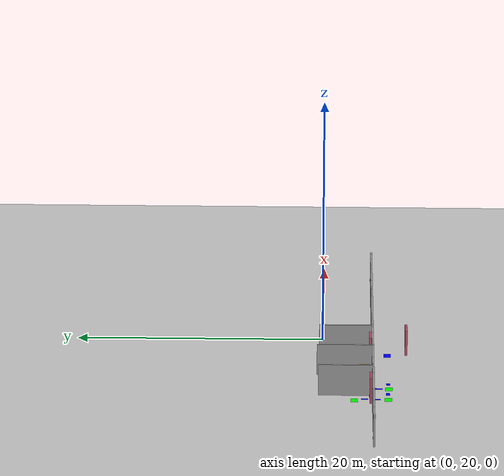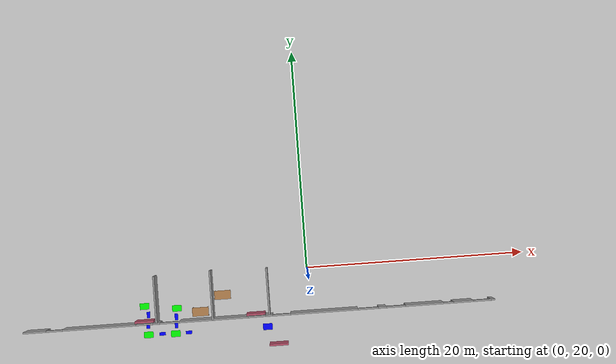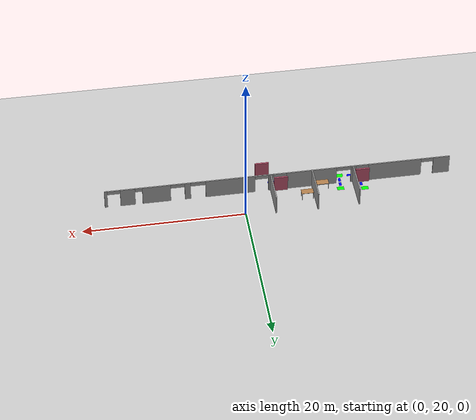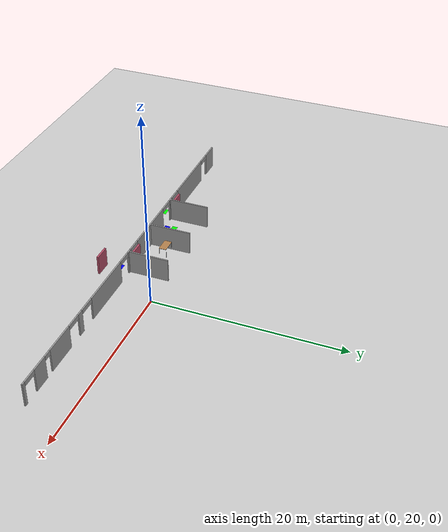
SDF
<sdf version="1.6">
 <world name="default">
  <model name="ground_plane">
   <pose>0 0 0.001 0 -0 0</pose>
   <static>1</static>
   <link name="link">
    <collision name="collision">
     <geometry><plane><normal>0 0 1</normal><size>100 100</size></plane></geometry>
     <surface><friction><ode><mu>100</mu><mu2>50</mu2></ode></friction></surface>
    </collision>
    <visual name="visual">
     <cast_shadows>0</cast_shadows>
     <geometry><plane><normal>0 0 1</normal><size>100 100</size></plane></geometry>
     <material>
      <script><uri>file://media/materials/scripts/gazebo.material</uri><name>Gazebo/Grey</name></script>
     </material>
    </visual>
   </link>
  </model>
  <model name="table_1">
   <static>1</static>
   <link name="link">
    <collision name="surface">
     <pose>0 0 1 0 -0 0</pose>
     <geometry><box><size>1.5 0.8 0.03</size></box></geometry>
     <surface><friction><ode><mu>0.6</mu><mu2>0.6</mu2></ode></friction></surface>
    </collision>
    <visual name="visual1">
     <pose>0 0 1 0 -0 0</pose>
     <geometry><box><size>1.5 0.8 0.03</size></box></geometry>
     <material>
      <script><uri>file://media/materials/scripts/gazebo.material</uri><name>Gazebo/Wood</name></script>
     </material>
    </visual>
    <collision name="front_left_leg">
     <pose>0.68 0.38 0.5 0 -0 0</pose>
     <geometry><cylinder><radius>0.02</radius><length>1</length></cylinder></geometry>
    </collision>
    <visual name="front_left_leg">
     <pose>0.68 0.38 0.5 0 -0 0</pose>
     <geometry><cylinder><radius>0.02</radius><length>1</length></cylinder></geometry>
     <material>
      <script><uri>file://media/materials/scripts/gazebo.material</uri><name>Gazebo/Grey</name></script>
     </material>
    </visual>
    <collision name="front_right_leg">
     <pose>0.68 -0.38 0.5 0 -0 0</pose>
     <geometry><cylinder><radius>0.02</radius><length>1</length></cylinder></geometry>
    </collision>
    <visual name="front_right_leg">
     <pose>0.68 -0.38 0.5 0 -0 0</pose>
     <geometry><cylinder><radius>0.02</radius><length>1</length></cylinder></geometry>
     <material>
      <script><uri>file://media/materials/scripts/gazebo.material</uri><name>Gazebo/Grey</name></script>
     </material>
    </visual>
    <collision name="back_right_leg">
     <pose>-0.68 -0.38 0.5 0 -0 0</pose>
     <geometry><cylinder><radius>0.02</radius><length>1</length></cylinder></geometry>
    </collision>
    <visual name="back_right_leg">
     <pose>-0.68 -0.38 0.5 0 -0 0</pose>
     <geometry><cylinder><radius>0.02</radius><length>1</length></cylinder></geometry>
     <material>
      <script><uri>file://media/materials/scripts/gazebo.material</uri><name>Gazebo/Grey</name></script>
     </material>
    </visual>
    <collision name="back_left_leg">
     <pose>-0.68 0.38 0.5 0 -0 0</pose>
     <geometry><cylinder><radius>0.02</radius><length>1</length></cylinder></geometry>
    </collision>
    <visual name="back_left_leg">
     <pose>-0.68 0.38 0.5 0 -0 0</pose>
     <geometry><cylinder><radius>0.02</radius><length>1</length></cylinder></geometry>
     <material>
      <script><uri>file://media/materials/scripts/gazebo.material</uri><name>Gazebo/Grey</name></script>
     </material>
    </visual>
   </link>
   <pose>-10.0366 16.6825 0.001 0 -0 0</pose>
  </model>
  <model name="table_5">
   <static>1</static>
   <link name="link">
    <collision name="surface">
     <pose>0 0 1 0 -0 0</pose>
     <geometry><box><size>1.5 0.8 0.03</size></box></geometry>
     <surface><friction><ode><mu>0.6</mu><mu2>0.6</mu2></ode></friction></surface>
    </collision>
    <visual name="visual1">
     <pose>0 0 1 0 -0 0</pose>
     <geometry><box><size>1.5 0.8 0.03</size></box></geometry>
     <material>
      <script><uri>file://media/materials/scripts/gazebo.material</uri><name>Gazebo/Wood</name></script>
     </material>
    </visual>
    <collision name="front_left_leg">
     <pose>0.68 0.38 0.5 0 -0 0</pose>
     <geometry><cylinder><radius>0.02</radius><length>1</length></cylinder></geometry>
    </collision>
    <visual name="front_left_leg">
     <pose>0.68 0.38 0.5 0 -0 0</pose>
     <geometry><cylinder><radius>0.02</radius><length>1</length></cylinder></geometry>
     <material>
      <script><uri>file://media/materials/scripts/gazebo.material</uri><name>Gazebo/Grey</name></script>
     </material>
    </visual>
    <collision name="front_right_leg">
     <pose>0.68 -0.38 0.5 0 -0 0</pose>
     <geometry><cylinder><radius>0.02</radius><length>1</length></cylinder></geometry>
    </collision>
    <visual name="front_right_leg">
     <pose>0.68 -0.38 0.5 0 -0 0</pose>
     <geometry><cylinder><radius>0.02</radius><length>1</length></cylinder></geometry>
     <material>
      <script><uri>file://media/materials/scripts/gazebo.material</uri><name>Gazebo/Grey</name></script>
     </material>
    </visual>
    <collision name="back_right_leg">
     <pose>-0.68 -0.38 0.5 0 -0 0</pose>
     <geometry><cylinder><radius>0.02</radius><length>1</length></cylinder></geometry>
    </collision>
    <visual name="back_right_leg">
     <pose>-0.68 -0.38 0.5 0 -0 0</pose>
     <geometry><cylinder><radius>0.02</radius><length>1</length></cylinder></geometry>
     <material>
      <script><uri>file://media/materials/scripts/gazebo.material</uri><name>Gazebo/Grey</name></script>
     </material>
    </visual>
    <collision name="back_left_leg">
     <pose>-0.68 0.38 0.5 0 -0 0</pose>
     <geometry><cylinder><radius>0.02</radius><length>1</length></cylinder></geometry>
    </collision>
    <visual name="back_left_leg">
     <pose>-0.68 0.38 0.5 0 -0 0</pose>
     <geometry><cylinder><radius>0.02</radius><length>1</length></cylinder></geometry>
     <material>
      <script><uri>file://media/materials/scripts/gazebo.material</uri><name>Gazebo/Grey</name></script>
     </material>
    </visual>
   </link>
   <pose>-7.90698 18.0796 0.001 0 -0 0</pose>
  </model>
  <model name="corridor_18">
   <link name="link">
    <pose>0 0 0.001 0 -0 0</pose>
    <inertial>
     <mass>0.0352517</mass>
     <inertia>
      <ixx>0.00099707</ixx>
      <ixy>0</ixy>
      <ixz>0</ixz>
      <iyy>0.00220147</iyy>
      <iyz>0</iyz>
      <izz>0.0031692</izz>
     </inertia>
     <pose>0 0 0.001 0 -0 0</pose>
    </inertial>
    <visual name="visual">
     <geometry><box><size>0.862743 0.578289 1e-06</size></box></geometry>
     <material>
      <script><name>Gazebo/Grey</name><uri>file://media/materials/scripts/gazebo.material</uri></script>
      <ambient>0 1 0 1</ambient>
      <diffuse>0 1 0 1</diffuse>
      <specular>0 1 0 1</specular>
      <emissive>0 1 0 1</emissive>
      <shader type="vertex"><normal_map>__default__</normal_map></shader>
     </material>
     <pose>0 0 0.001 0 -0 0</pose>
    </visual>
    <collision name="collision">
     <pose>0 0 0.001 0 -0 0</pose>
     <geometry><box><size>0.862743 0.578289 0.000477</size></box></geometry>
     <surface>
      <friction>
       <ode><mu>1</mu><mu2>1</mu2><fdir1>0 0 0</fdir1><slip1>0</slip1><slip2>0</slip2></ode>
       <torsional>
        <coefficient>1</coefficient>
        <patch_radius>0</patch_radius>
        <surface_radius>0</surface_radius>
        <use_patch_radius>1</use_patch_radius>
        <ode><slip>0</slip></ode>
       </torsional>
      </friction>
      <bounce><restitution_coefficient>0</restitution_coefficient><threshold>1e+06</threshold></bounce>
      <contact>
       <collide_without_contact>0</collide_without_contact>
       <collide_without_contact_bitmask>1</collide_without_contact_bitmask>
       <collide_bitmask>1</collide_bitmask>
       <ode>
        <soft_cfm>0</soft_cfm>
        <soft_erp>0.2</soft_erp>
        <kp>1e+13</kp>
        <kd>1</kd>
        <max_vel>0.01</max_vel>
        <min_depth>0</min_depth>
       </ode>
       <bullet>
        <split_impulse>1</split_impulse>
        <split_impulse_penetration_threshold>-0.01</split_impulse_penetration_threshold>
        <soft_cfm>0</soft_cfm>
        <soft_erp>0.2</soft_erp>
        <kp>1e+13</kp>
        <kd>1</kd>
       </bullet>
      </contact>
     </surface>
    </collision>
   </link>
   <static>1</static>
   <pose>-12.5336 14.7447 0 0 -0 0</pose>
  </model>
  <model name="corridor_19">
   <link name="link">
    <pose>0 0 0.001 0 -0 0</pose>
    <inertial>
     <mass>0.0352517</mass>
     <inertia>
      <ixx>0.00099707</ixx>
      <ixy>0</ixy>
      <ixz>0</ixz>
      <iyy>0.00220147</iyy>
      <iyz>0</iyz>
      <izz>0.0031692</izz>
     </inertia>
     <pose>0 0 0.001 0 -0 0</pose>
    </inertial>
    <visual name="visual">
     <geometry><box><size>0.862743 0.578289 1e-06</size></box></geometry>
     <material>
      <script><name>Gazebo/Grey</name><uri>file://media/materials/scripts/gazebo.material</uri></script>
      <ambient>0 1 0 1</ambient>
      <diffuse>0 1 0 1</diffuse>
      <specular>0 1 0 1</specular>
      <emissive>0 1 0 1</emissive>
      <shader type="vertex"><normal_map>__default__</normal_map></shader>
     </material>
     <pose>0 0 0.001 0 -0 0</pose>
    </visual>
    <collision name="collision">
     <pose>0 0 0.001 0 -0 0</pose>
     <geometry><box><size>0.862743 0.578289 0.000477</size></box></geometry>
     <surface>
      <friction>
       <ode><mu>1</mu><mu2>1</mu2><fdir1>0 0 0</fdir1><slip1>0</slip1><slip2>0</slip2></ode>
       <torsional>
        <coefficient>1</coefficient>
        <patch_radius>0</patch_radius>
        <surface_radius>0</surface_radius>
        <use_patch_radius>1</use_patch_radius>
        <ode><slip>0</slip></ode>
       </torsional>
      </friction>
      <bounce><restitution_coefficient>0</restitution_coefficient><threshold>1e+06</threshold></bounce>
      <contact>
       <collide_without_contact>0</collide_without_contact>
       <collide_without_contact_bitmask>1</collide_without_contact_bitmask>
       <collide_bitmask>1</collide_bitmask>
       <ode>
        <soft_cfm>0</soft_cfm>
        <soft_erp>0.2</soft_erp>
        <kp>1e+13</kp>
        <kd>1</kd>
        <max_vel>0.01</max_vel>
        <min_depth>0</min_depth>
       </ode>
       <bullet>
        <split_impulse>1</split_impulse>
        <split_impulse_penetration_threshold>-0.01</split_impulse_penetration_threshold>
        <soft_cfm>0</soft_cfm>
        <soft_erp>0.2</soft_erp>
        <kp>1e+13</kp>
        <kd>1</kd>
       </bullet>
      </contact>
     </surface>
    </collision>
   </link>
   <static>1</static>
   <pose>-15.0379 14.8136 0 0 -0 0</pose>
  </model>
  <model name="intersection_5">
   <link name="link">
    <pose>0 0 0.001 0 -0 0</pose>
    <inertial>
     <mass>0.0352517</mass>
     <inertia>
      <ixx>0.000997067</ixx>
      <ixy>0</ixy>
      <ixz>0</ixz>
      <iyy>0.00220147</iyy>
      <iyz>0</iyz>
      <izz>0.0031692</izz>
     </inertia>
     <pose>0 0 0.001 0 -0 0</pose>
    </inertial>
    <visual name="visual">
     <geometry><box><size>0.862743 0.578289 1e-06</size></box></geometry>
     <material>
      <script><name>Gazebo/Grey</name><uri>file://media/materials/scripts/gazebo.material</uri></script>
      <ambient>0 0 1 1</ambient>
      <diffuse>0 0 1 1</diffuse>
      <specular>0 0 1 1</specular>
      <emissive>0 0 1 1</emissive>
      <shader type="vertex"><normal_map>__default__</normal_map></shader>
     </material>
     <pose>0 0 0.001 0 -0 0</pose>
    </visual>
    <collision name="collision">
     <pose>0 0 0.001 0 -0 0</pose>
     <geometry><box><size>0.862743 0.578289 0.000477</size></box></geometry>
     <surface>
      <friction>
       <ode><mu>1</mu><mu2>1</mu2><fdir1>0 0 0</fdir1><slip1>0</slip1><slip2>0</slip2></ode>
       <torsional>
        <coefficient>1</coefficient>
        <patch_radius>0</patch_radius>
        <surface_radius>0</surface_radius>
        <use_patch_radius>1</use_patch_radius>
        <ode><slip>0</slip></ode>
       </torsional>
      </friction>
      <bounce><restitution_coefficient>0</restitution_coefficient><threshold>1e+06</threshold></bounce>
      <contact>
       <collide_without_contact>0</collide_without_contact>
       <collide_without_contact_bitmask>1</collide_without_contact_bitmask>
       <collide_bitmask>1</collide_bitmask>
       <ode>
        <soft_cfm>0</soft_cfm>
        <soft_erp>0.2</soft_erp>
        <kp>1e+13</kp>
        <kd>1</kd>
        <max_vel>0.01</max_vel>
        <min_depth>0</min_depth>
       </ode>
       <bullet>
        <split_impulse>1</split_impulse>
        <split_impulse_penetration_threshold>-0.01</split_impulse_penetration_threshold>
        <soft_cfm>0</soft_cfm>
        <soft_erp>0.2</soft_erp>
        <kp>1e+13</kp>
        <kd>1</kd>
       </bullet>
      </contact>
     </surface>
    </collision>
   </link>
   <static>1</static>
   <pose>-3.98047 14.7833 0 0 -0 0</pose>
  </model>
  <model name="doorOutside_4">
   <link name="link">
    <pose>0.155539 -0.366282 0.216958 0 -0 0</pose>
    <inertial>
     <mass>2.13199</mass>
     <inertia>
      <ixx>0.452656</ixx>
      <ixy>0</ixy>
      <ixz>0</ixz>
      <iyy>0.796738</iyy>
      <iyz>0</iyz>
      <izz>0.699414</izz>
     </inertia>
    </inertial>
    <visual name="visual">
     <geometry><box><size>1.71368 0.198843 2.05986</size></box></geometry>
     <material>
      <script><name>Gazebo/Grey</name><uri>file://media/materials/scripts/gazebo.material</uri></script>
      <ambient>0.7 0.3 0.4 1</ambient>
      <diffuse>0.7 0.7 0.7 1</diffuse>
      <specular>0.01 0.01 0.01 1</specular>
      <emissive>0 0 0 1</emissive>
      <shader type="vertex"><normal_map>__default__</normal_map></shader>
      <lighting>0</lighting>
     </material>
    </visual>
    <collision name="collision">
     <geometry><box><size>1.71368 0.198843 2.05986</size></box></geometry>
     <surface>
      <friction>
       <ode><mu>1</mu><mu2>1</mu2><fdir1>0 0 0</fdir1><slip1>0</slip1><slip2>0</slip2></ode>
       <torsional>
        <coefficient>1</coefficient>
        <patch_radius>0</patch_radius>
        <surface_radius>0</surface_radius>
        <use_patch_radius>1</use_patch_radius>
        <ode><slip>0</slip></ode>
       </torsional>
      </friction>
      <bounce><restitution_coefficient>0</restitution_coefficient><threshold>1e+06</threshold></bounce>
      <contact>
       <collide_without_contact>0</collide_without_contact>
       <collide_without_contact_bitmask>1</collide_without_contact_bitmask>
       <collide_bitmask>1</collide_bitmask>
       <ode>
        <soft_cfm>0</soft_cfm>
        <soft_erp>0.2</soft_erp>
        <kp>1e+13</kp>
        <kd>1</kd>
        <max_vel>0.01</max_vel>
        <min_depth>0</min_depth>
       </ode>
       <bullet>
        <split_impulse>1</split_impulse>
        <split_impulse_penetration_threshold>-0.01</split_impulse_penetration_threshold>
        <soft_cfm>0</soft_cfm>
        <soft_erp>0.2</soft_erp>
        <kp>1e+13</kp>
        <kd>1</kd>
       </bullet>
      </contact>
     </surface>
    </collision>
   </link>
   <static>0</static>
   <pose>-3.16757 13.633 0.812972 0 0 -0.001236</pose>
  </model>
  <model name="doorOutside_8">
   <link name="link">
    <pose>0.155539 -0.366282 0.216958 0 -0 0</pose>
    <inertial>
     <mass>2.13199</mass>
     <inertia>
      <ixx>0.452656</ixx>
      <ixy>0</ixy>
      <ixz>0</ixz>
      <iyy>0.796738</iyy>
      <iyz>0</iyz>
      <izz>0.699414</izz>
     </inertia>
    </inertial>
    <visual name="visual">
     <geometry><box><size>1.71368 0.198843 2.05986</size></box></geometry>
     <material>
      <script><name>Gazebo/Grey</name><uri>file://media/materials/scripts/gazebo.material</uri></script>
      <ambient>0.7 0.3 0.4 1</ambient>
      <diffuse>0.7 0.7 0.7 1</diffuse>
      <specular>0.01 0.01 0.01 1</specular>
      <emissive>0 0 0 1</emissive>
      <shader type="vertex"><normal_map>__default__</normal_map></shader>
      <lighting>0</lighting>
     </material>
    </visual>
    <collision name="collision">
     <geometry><box><size>1.71368 0.198843 2.05986</size></box></geometry>
     <surface>
      <friction>
       <ode><mu>1</mu><mu2>1</mu2><fdir1>0 0 0</fdir1><slip1>0</slip1><slip2>0</slip2></ode>
       <torsional>
        <coefficient>1</coefficient>
        <patch_radius>0</patch_radius>
        <surface_radius>0</surface_radius>
        <use_patch_radius>1</use_patch_radius>
        <ode><slip>0</slip></ode>
       </torsional>
      </friction>
      <bounce><restitution_coefficient>0</restitution_coefficient><threshold>1e+06</threshold></bounce>
      <contact>
       <collide_without_contact>0</collide_without_contact>
       <collide_without_contact_bitmask>1</collide_without_contact_bitmask>
       <collide_bitmask>1</collide_bitmask>
       <ode>
        <soft_cfm>0</soft_cfm>
        <soft_erp>0.2</soft_erp>
        <kp>1e+13</kp>
        <kd>1</kd>
        <max_vel>0.01</max_vel>
        <min_depth>0</min_depth>
       </ode>
       <bullet>
        <split_impulse>1</split_impulse>
        <split_impulse_penetration_threshold>-0.01</split_impulse_penetration_threshold>
        <soft_cfm>0</soft_cfm>
        <soft_erp>0.2</soft_erp>
        <kp>1e+13</kp>
        <kd>1</kd>
       </bullet>
      </contact>
     </surface>
    </collision>
   </link>
   <static>0</static>
   <pose>-15.302 16.5446 0.812972 0 -0 0.000415</pose>
  </model>
  <model name="doorOutside_10">
   <link name="link">
    <pose>0.155539 -0.366282 0.216958 0 -0 0</pose>
    <inertial>
     <mass>2.13199</mass>
     <inertia>
      <ixx>0.452656</ixx>
      <ixy>0</ixy>
      <ixz>0</ixz>
      <iyy>0.796738</iyy>
      <iyz>0</iyz>
      <izz>0.699414</izz>
     </inertia>
    </inertial>
    <visual name="visual">
     <geometry><box><size>1.71368 0.198843 2.05986</size></box></geometry>
     <material>
      <script><name>Gazebo/Grey</name><uri>file://media/materials/scripts/gazebo.material</uri></script>
      <ambient>0.7 0.3 0.4 1</ambient>
      <diffuse>0.7 0.7 0.7 1</diffuse>
      <specular>0.01 0.01 0.01 1</specular>
      <emissive>0 0 0 1</emissive>
      <shader type="vertex"><normal_map>__default__</normal_map></shader>
      <lighting>0</lighting>
     </material>
    </visual>
    <collision name="collision">
     <geometry><box><size>1.71368 0.198843 2.05986</size></box></geometry>
     <surface>
      <friction>
       <ode><mu>1</mu><mu2>1</mu2><fdir1>0 0 0</fdir1><slip1>0</slip1><slip2>0</slip2></ode>
       <torsional>
        <coefficient>1</coefficient>
        <patch_radius>0</patch_radius>
        <surface_radius>0</surface_radius>
        <use_patch_radius>1</use_patch_radius>
        <ode><slip>0</slip></ode>
       </torsional>
      </friction>
      <bounce><restitution_coefficient>0</restitution_coefficient><threshold>1e+06</threshold></bounce>
      <contact>
       <collide_without_contact>0</collide_without_contact>
       <collide_without_contact_bitmask>1</collide_without_contact_bitmask>
       <collide_bitmask>1</collide_bitmask>
       <ode>
        <soft_cfm>0</soft_cfm>
        <soft_erp>0.2</soft_erp>
        <kp>1e+13</kp>
        <kd>1</kd>
        <max_vel>0.01</max_vel>
        <min_depth>0</min_depth>
       </ode>
       <bullet>
        <split_impulse>1</split_impulse>
        <split_impulse_penetration_threshold>-0.01</split_impulse_penetration_threshold>
        <soft_cfm>0</soft_cfm>
        <soft_erp>0.2</soft_erp>
        <kp>1e+13</kp>
        <kd>1</kd>
       </bullet>
      </contact>
     </surface>
    </collision>
   </link>
   <static>0</static>
   <pose>-5.08289 16.5322 0.812972 0 0 -0.000163</pose>
  </model>
  <model name="Se1_cut">
   <pose>3.62364 13.9276 0 0 -0 0</pose>
   <link name="Wall_46">
    <pose>-8.2779 2.06374 0 0 -0 0</pose>
    <visual name="Wall_46_Visual_0">
     <pose>-20.462 0 1.25 0 -0 0</pose>
     <geometry><box><size>2.07596 0.15 2.5</size></box></geometry>
     <material>
      <script><uri>file://media/materials/scripts/gazebo.material</uri><name>Gazebo/Grey</name></script>
      <ambient>1 1 1 1</ambient>
     </material>
    </visual>
    <collision name="Wall_46_Collision_0">
     <geometry><box><size>2.07596 0.15 2.5</size></box></geometry>
     <pose>-20.462 0 1.25 0 -0 0</pose>
    </collision>
    <visual name="Wall_46_Visual_1">
     <pose>-14.5766 0 1.25 0 -0 0</pose>
     <geometry><box><size>6.67122 0.15 2.5</size></box></geometry>
     <material>
      <script><uri>file://media/materials/scripts/gazebo.material</uri><name>Gazebo/Grey</name></script>
      <ambient>1 1 1 1</ambient>
     </material>
    </visual>
    <collision name="Wall_46_Collision_1">
     <geometry><box><size>6.67122 0.15 2.5</size></box></geometry>
     <pose>-14.5766 0 1.25 0 -0 0</pose>
    </collision>
    <visual name="Wall_46_Visual_2">
     <pose>-9.36125 0 1.25 0 -0 0</pose>
     <geometry><box><size>0.629513 0.15 2.5</size></box></geometry>
     <material>
      <script><uri>file://media/materials/scripts/gazebo.material</uri><name>Gazebo/Grey</name></script>
      <ambient>1 1 1 1</ambient>
     </material>
    </visual>
    <collision name="Wall_46_Collision_2">
     <geometry><box><size>0.629513 0.15 2.5</size></box></geometry>
     <pose>-9.36125 0 1.25 0 -0 0</pose>
    </collision>
    <visual name="Wall_46_Visual_3">
     <pose>-4.12766 0 1.25 0 -0 0</pose>
     <geometry><box><size>6.28205 0.15 2.5</size></box></geometry>
     <material>
      <script><uri>file://media/materials/scripts/gazebo.material</uri><name>Gazebo/Grey</name></script>
      <ambient>1 1 1 1</ambient>
     </material>
    </visual>
    <collision name="Wall_46_Collision_3">
     <geometry><box><size>6.28205 0.15 2.5</size></box></geometry>
     <pose>-4.12766 0 1.25 0 -0 0</pose>
    </collision>
    <visual name="Wall_46_Visual_4">
     <pose>0.926374 0 1.25 0 -0 0</pose>
     <geometry><box><size>0.642812 0.15 2.5</size></box></geometry>
     <material>
      <script><uri>file://media/materials/scripts/gazebo.material</uri><name>Gazebo/Grey</name></script>
      <ambient>1 1 1 1</ambient>
     </material>
    </visual>
    <collision name="Wall_46_Collision_4">
     <geometry><box><size>0.642812 0.15 2.5</size></box></geometry>
     <pose>0.926374 0 1.25 0 -0 0</pose>
    </collision>
    <visual name="Wall_46_Visual_5">
     <pose>5.96711 0 1.25 0 -0 0</pose>
     <geometry><box><size>6.14905 0.15 2.5</size></box></geometry>
     <material>
      <script><uri>file://media/materials/scripts/gazebo.material</uri><name>Gazebo/Grey</name></script>
      <ambient>1 1 1 1</ambient>
     </material>
    </visual>
    <collision name="Wall_46_Collision_5">
     <geometry><box><size>6.14905 0.15 2.5</size></box></geometry>
     <pose>5.96711 0 1.25 0 -0 0</pose>
    </collision>
    <visual name="Wall_46_Visual_6">
     <pose>11.2606 0 1.25 0 -0 0</pose>
     <geometry><box><size>0.722612 0.15 2.5</size></box></geometry>
     <material>
      <script><uri>file://media/materials/scripts/gazebo.material</uri><name>Gazebo/Grey</name></script>
      <ambient>1 1 1 1</ambient>
     </material>
    </visual>
    <collision name="Wall_46_Collision_6">
     <geometry><box><size>0.722612 0.15 2.5</size></box></geometry>
     <pose>11.2606 0 1.25 0 -0 0</pose>
    </collision>
    <visual name="Wall_46_Visual_7">
     <pose>15.1043 0 1.25 0 -0 0</pose>
     <geometry><box><size>3.46243 0.15 2.5</size></box></geometry>
     <material>
      <script><uri>file://media/materials/scripts/gazebo.material</uri><name>Gazebo/Grey</name></script>
      <ambient>1 1 1 1</ambient>
     </material>
    </visual>
    <collision name="Wall_46_Collision_7">
     <geometry><box><size>3.46243 0.15 2.5</size></box></geometry>
     <pose>15.1043 0 1.25 0 -0 0</pose>
    </collision>
    <visual name="Wall_46_Visual_8">
     <pose>18.6421 0 1.25 0 -0 0</pose>
     <geometry><box><size>1.81322 0.15 2.5</size></box></geometry>
     <material>
      <script><uri>file://media/materials/scripts/gazebo.material</uri><name>Gazebo/Grey</name></script>
      <ambient>1 1 1 1</ambient>
     </material>
    </visual>
    <collision name="Wall_46_Collision_8">
     <geometry><box><size>1.81322 0.15 2.5</size></box></geometry>
     <pose>18.6421 0 1.25 0 -0 0</pose>
    </collision>
    <visual name="Wall_46_Visual_9">
     <pose>21.3202 0 1.25 0 -0 0</pose>
     <geometry><box><size>0.359679 0.15 2.5</size></box></geometry>
     <material>
      <script><uri>file://media/materials/scripts/gazebo.material</uri><name>Gazebo/Grey</name></script>
      <ambient>1 1 1 1</ambient>
     </material>
    </visual>
    <collision name="Wall_46_Collision_9">
     <geometry><box><size>0.359679 0.15 2.5</size></box></geometry>
     <pose>21.3202 0 1.25 0 -0 0</pose>
    </collision>
    <visual name="Wall_46_Visual_10">
     <pose>-18.6681 0 2.25 0 -0 0</pose>
     <geometry><box><size>1.51181 0.15 0.5</size></box></geometry>
     <material>
      <script><uri>file://media/materials/scripts/gazebo.material</uri><name>Gazebo/Grey</name></script>
      <ambient>1 1 1 1</ambient>
     </material>
    </visual>
    <collision name="Wall_46_Collision_10">
     <geometry><box><size>1.51181 0.15 0.5</size></box></geometry>
     <pose>-18.6681 0 2.25 0 -0 0</pose>
    </collision>
    <visual name="Wall_46_Visual_11">
     <pose>-10.4585 0 2.25 0 -0 0</pose>
     <geometry><box><size>1.565 0.15 0.5</size></box></geometry>
     <material>
      <script><uri>file://media/materials/scripts/gazebo.material</uri><name>Gazebo/Grey</name></script>
      <ambient>1 1 1 1</ambient>
     </material>
    </visual>
    <collision name="Wall_46_Collision_11">
     <geometry><box><size>1.565 0.15 0.5</size></box></geometry>
     <pose>-10.4585 0 2.25 0 -0 0</pose>
    </collision>
    <visual name="Wall_46_Visual_12">
     <pose>-8.15759 0 2.25 0 -0 0</pose>
     <geometry><box><size>1.77781 0.15 0.5</size></box></geometry>
     <material>
      <script><uri>file://media/materials/scripts/gazebo.material</uri><name>Gazebo/Grey</name></script>
      <ambient>1 1 1 1</ambient>
     </material>
    </visual>
    <collision name="Wall_46_Collision_12">
     <geometry><box><size>1.77781 0.15 0.5</size></box></geometry>
     <pose>-8.15759 0 2.25 0 -0 0</pose>
    </collision>
    <visual name="Wall_46_Visual_13">
     <pose>-0.190835 0 2.25 0 -0 0</pose>
     <geometry><box><size>1.5916 0.15 0.5</size></box></geometry>
     <material>
      <script><uri>file://media/materials/scripts/gazebo.material</uri><name>Gazebo/Grey</name></script>
      <ambient>1 1 1 1</ambient>
     </material>
    </visual>
    <collision name="Wall_46_Collision_13">
     <geometry><box><size>1.5916 0.15 0.5</size></box></geometry>
     <pose>-0.190835 0 2.25 0 -0 0</pose>
    </collision>
    <visual name="Wall_46_Visual_14">
     <pose>2.07018 0 2.25 0 -0 0</pose>
     <geometry><box><size>1.64481 0.15 0.5</size></box></geometry>
     <material>
      <script><uri>file://media/materials/scripts/gazebo.material</uri><name>Gazebo/Grey</name></script>
      <ambient>1 1 1 1</ambient>
     </material>
    </visual>
    <collision name="Wall_46_Collision_14">
     <geometry><box><size>1.64481 0.15 0.5</size></box></geometry>
     <pose>2.07018 0 2.25 0 -0 0</pose>
    </collision>
    <visual name="Wall_46_Visual_15">
     <pose>9.97044 0 2.25 0 -0 0</pose>
     <geometry><box><size>1.85761 0.15 0.5</size></box></geometry>
     <material>
      <script><uri>file://media/materials/scripts/gazebo.material</uri><name>Gazebo/Grey</name></script>
      <ambient>1 1 1 1</ambient>
     </material>
    </visual>
    <collision name="Wall_46_Collision_15">
     <geometry><box><size>1.85761 0.15 0.5</size></box></geometry>
     <pose>9.97044 0 2.25 0 -0 0</pose>
    </collision>
    <visual name="Wall_46_Visual_16">
     <pose>12.4975 0 2.25 0 -0 0</pose>
     <geometry><box><size>1.75121 0.15 0.5</size></box></geometry>
     <material>
      <script><uri>file://media/materials/scripts/gazebo.material</uri><name>Gazebo/Grey</name></script>
      <ambient>1 1 1 1</ambient>
     </material>
    </visual>
    <collision name="Wall_46_Collision_16">
     <geometry><box><size>1.75121 0.15 0.5</size></box></geometry>
     <pose>12.4975 0 2.25 0 -0 0</pose>
    </collision>
    <visual name="Wall_46_Visual_17">
     <pose>17.2855 0 2.25 0 -0 0</pose>
     <geometry><box><size>0.9 0.15 0.5</size></box></geometry>
     <material>
      <script><uri>file://media/materials/scripts/gazebo.material</uri><name>Gazebo/Grey</name></script>
      <ambient>1 1 1 1</ambient>
     </material>
    </visual>
    <collision name="Wall_46_Collision_17">
     <geometry><box><size>0.9 0.15 0.5</size></box></geometry>
     <pose>17.2855 0 2.25 0 -0 0</pose>
    </collision>
    <visual name="Wall_46_Visual_18">
     <pose>20.3445 0 2.25 0 -0 0</pose>
     <geometry><box><size>1.5916 0.15 0.5</size></box></geometry>
     <material>
      <script><uri>file://media/materials/scripts/gazebo.material</uri><name>Gazebo/Grey</name></script>
      <ambient>1 1 1 1</ambient>
     </material>
    </visual>
    <collision name="Wall_46_Collision_18">
     <geometry><box><size>1.5916 0.15 0.5</size></box></geometry>
     <pose>20.3445 0 2.25 0 -0 0</pose>
    </collision>
   </link>
   <link name="Wall_51">
    <collision name="Wall_51_Collision">
     <geometry><box><size>4.25 0.15 2.5</size></box></geometry>
     <pose>0 0 1.25 0 -0 0</pose>
    </collision>
    <visual name="Wall_51_Visual">
     <pose>0 0 1.25 0 -0 0</pose>
     <geometry><box><size>4.25 0.15 2.5</size></box></geometry>
     <material>
      <script><uri>file://media/materials/scripts/gazebo.material</uri><name>Gazebo/Grey</name></script>
      <ambient>1 1 1 1</ambient>
     </material>
    </visual>
    <pose>-17.6222 4.24038 0 0 0 -1.5708</pose>
   </link>
   <link name="Wall_53">
    <collision name="Wall_53_Collision">
     <geometry><box><size>4.5 0.15 2.5</size></box></geometry>
     <pose>0 0 1.25 0 -0 0</pose>
    </collision>
    <visual name="Wall_53_Visual">
     <pose>0 0 1.25 0 -0 0</pose>
     <geometry><box><size>4.5 0.15 2.5</size></box></geometry>
     <material>
      <script><uri>file://media/materials/scripts/gazebo.material</uri><name>Gazebo/Grey</name></script>
      <ambient>1 1 1 1</ambient>
     </material>
    </visual>
    <pose>-12.4852 4.25279 0 0 0 -1.5708</pose>
   </link>
   <link name="Wall_55">
    <collision name="Wall_55_Collision">
     <geometry><box><size>4.25 0.15 2.5</size></box></geometry>
     <pose>0 0 1.25 0 -0 0</pose>
    </collision>
    <visual name="Wall_55_Visual">
     <pose>0 0 1.25 0 -0 0</pose>
     <geometry><box><size>4.25 0.15 2.5</size></box></geometry>
     <material>
      <script><uri>file://media/materials/scripts/gazebo.material</uri><name>Gazebo/Grey</name></script>
      <ambient>1 1 1 1</ambient>
     </material>
    </visual>
    <pose>-7.3248 4.21819 0 0 0 -1.5708</pose>
   </link>
   <static>1</static>
  </model>
  <model name="intersectionXS_7">
   <link name="link">
    <pose>0 0 0.001 0 -0 0</pose>
    <inertial>
     <mass>0.0122177</mass>
     <inertia>
      <ixx>0.000345567</ixx>
      <ixy>0</ixy>
      <ixz>0</ixz>
      <iyy>9.61239e-05</iyy>
      <iyz>0</iyz>
      <izz>0.000431523</izz>
     </inertia>
    </inertial>
    <visual name="visual">
     <geometry><box><size>0.299013 0.578289 1e-06</size></box></geometry>
     <material>
      <script><name>Gazebo/Grey</name><uri>file://media/materials/scripts/gazebo.material</uri></script>
      <ambient>0 0 1 1</ambient>
      <diffuse>0 0 1 1</diffuse>
      <specular>0 0 1 1</specular>
      <emissive>0 0 1 1</emissive>
      <shader type="vertex"><normal_map>__default__</normal_map></shader>
     </material>
     <pose>0 0 0.001 0 -0 0</pose>
    </visual>
    <collision name="collision">
     <pose>0 0 0.001 0 -0 0</pose>
     <geometry><box><size>0.299013 0.578289 0.000477</size></box></geometry>
     <surface>
      <friction>
       <ode><mu>1</mu><mu2>1</mu2><fdir1>0 0 0</fdir1><slip1>0</slip1><slip2>0</slip2></ode>
       <torsional>
        <coefficient>1</coefficient>
        <patch_radius>0</patch_radius>
        <surface_radius>0</surface_radius>
        <use_patch_radius>1</use_patch_radius>
        <ode><slip>0</slip></ode>
       </torsional>
      </friction>
      <bounce><restitution_coefficient>0</restitution_coefficient><threshold>1e+06</threshold></bounce>
      <contact>
       <collide_without_contact>0</collide_without_contact>
       <collide_without_contact_bitmask>1</collide_without_contact_bitmask>
       <collide_bitmask>1</collide_bitmask>
       <ode>
        <soft_cfm>0</soft_cfm>
        <soft_erp>0.2</soft_erp>
        <kp>1e+13</kp>
        <kd>1</kd>
        <max_vel>0.01</max_vel>
        <min_depth>0</min_depth>
       </ode>
       <bullet>
        <split_impulse>1</split_impulse>
        <split_impulse_penetration_threshold>-0.01</split_impulse_penetration_threshold>
        <soft_cfm>0</soft_cfm>
        <soft_erp>0.2</soft_erp>
        <kp>1e+13</kp>
        <kd>1</kd>
       </bullet>
      </contact>
     </surface>
    </collision>
   </link>
   <static>1</static>
   <pose>-15.0355 15.695 0 0 -0 0</pose>
  </model>
  <model name="intersectionXS_8">
   <link name="link">
    <pose>0 0 0.001 0 -0 0</pose>
    <inertial>
     <mass>0.0122177</mass>
     <inertia>
      <ixx>0.000345567</ixx>
      <ixy>0</ixy>
      <ixz>0</ixz>
      <iyy>9.61239e-05</iyy>
      <iyz>0</iyz>
      <izz>0.000431523</izz>
     </inertia>
    </inertial>
    <visual name="visual">
     <geometry><box><size>0.299013 0.578289 1e-06</size></box></geometry>
     <material>
      <script><name>Gazebo/Grey</name><uri>file://media/materials/scripts/gazebo.material</uri></script>
      <ambient>0 0 1 1</ambient>
      <diffuse>0 0 1 1</diffuse>
      <specular>0 0 1 1</specular>
      <emissive>0 0 1 1</emissive>
      <shader type="vertex"><normal_map>__default__</normal_map></shader>
     </material>
     <pose>0 0 0.001 0 -0 0</pose>
    </visual>
    <collision name="collision">
     <pose>0 0 0.001 0 -0 0</pose>
     <geometry><box><size>0.299013 0.578289 0.000477</size></box></geometry>
     <surface>
      <friction>
       <ode><mu>1</mu><mu2>1</mu2><fdir1>0 0 0</fdir1><slip1>0</slip1><slip2>0</slip2></ode>
       <torsional>
        <coefficient>1</coefficient>
        <patch_radius>0</patch_radius>
        <surface_radius>0</surface_radius>
        <use_patch_radius>1</use_patch_radius>
        <ode><slip>0</slip></ode>
       </torsional>
      </friction>
      <bounce><restitution_coefficient>0</restitution_coefficient><threshold>1e+06</threshold></bounce>
      <contact>
       <collide_without_contact>0</collide_without_contact>
       <collide_without_contact_bitmask>1</collide_without_contact_bitmask>
       <collide_bitmask>1</collide_bitmask>
       <ode>
        <soft_cfm>0</soft_cfm>
        <soft_erp>0.2</soft_erp>
        <kp>1e+13</kp>
        <kd>1</kd>
        <max_vel>0.01</max_vel>
        <min_depth>0</min_depth>
       </ode>
       <bullet>
        <split_impulse>1</split_impulse>
        <split_impulse_penetration_threshold>-0.01</split_impulse_penetration_threshold>
        <soft_cfm>0</soft_cfm>
        <soft_erp>0.2</soft_erp>
        <kp>1e+13</kp>
        <kd>1</kd>
       </bullet>
      </contact>
     </surface>
    </collision>
   </link>
   <static>1</static>
   <pose>-14.9426 16.6481 0 0 -0 0</pose>
  </model>
  <model name="corridor_22_clone_0">
   <link name="link">
    <pose>0 0 0.001 0 -0 0</pose>
    <inertial>
     <mass>0.0352517</mass>
     <inertia>
      <ixx>0.00099707</ixx>
      <ixy>0</ixy>
      <ixz>0</ixz>
      <iyy>0.00220147</iyy>
      <iyz>0</iyz>
      <izz>0.0031692</izz>
     </inertia>
     <pose>0 0 0.001 0 -0 0</pose>
    </inertial>
    <visual name="visual">
     <geometry><box><size>0.862743 0.578289 1e-06</size></box></geometry>
     <material>
      <script><name>Gazebo/Grey</name><uri>file://media/materials/scripts/gazebo.material</uri></script>
      <ambient>0 1 0 1</ambient>
      <diffuse>0 1 0 1</diffuse>
      <specular>0 1 0 1</specular>
      <emissive>0 1 0 1</emissive>
      <shader type="vertex"><normal_map>__default__</normal_map></shader>
     </material>
     <pose>0 0 0.001 0 -0 0</pose>
    </visual>
    <collision name="collision">
     <pose>0 0 0.001 0 -0 0</pose>
     <geometry><box><size>0.862743 0.578289 0.000477</size></box></geometry>
     <surface>
      <friction>
       <ode><mu>1</mu><mu2>1</mu2><fdir1>0 0 0</fdir1><slip1>0</slip1><slip2>0</slip2></ode>
       <torsional>
        <coefficient>1</coefficient>
        <patch_radius>0</patch_radius>
        <surface_radius>0</surface_radius>
        <use_patch_radius>1</use_patch_radius>
        <ode><slip>0</slip></ode>
       </torsional>
      </friction>
      <bounce><restitution_coefficient>0</restitution_coefficient><threshold>1e+06</threshold></bounce>
      <contact>
       <collide_without_contact>0</collide_without_contact>
       <collide_without_contact_bitmask>1</collide_without_contact_bitmask>
       <collide_bitmask>1</collide_bitmask>
       <ode>
        <soft_cfm>0</soft_cfm>
        <soft_erp>0.2</soft_erp>
        <kp>1e+13</kp>
        <kd>1</kd>
        <max_vel>0.01</max_vel>
        <min_depth>0</min_depth>
       </ode>
       <bullet>
        <split_impulse>1</split_impulse>
        <split_impulse_penetration_threshold>-0.01</split_impulse_penetration_threshold>
        <soft_cfm>0</soft_cfm>
        <soft_erp>0.2</soft_erp>
        <kp>1e+13</kp>
        <kd>1</kd>
       </bullet>
      </contact>
     </surface>
    </collision>
   </link>
   <static>1</static>
   <pose>-15.2565 17.4663 0 0 -0 0</pose>
  </model>
  <model name="corridor_22_clone_1">
   <link name="link">
    <pose>0 0 0.001 0 -0 0</pose>
    <inertial>
     <mass>0.0352517</mass>
     <inertia>
      <ixx>0.00099707</ixx>
      <ixy>0</ixy>
      <ixz>0</ixz>
      <iyy>0.00220147</iyy>
      <iyz>0</iyz>
      <izz>0.0031692</izz>
     </inertia>
     <pose>0 0 0.001 0 -0 0</pose>
    </inertial>
    <visual name="visual">
     <geometry><box><size>0.862743 0.578289 1e-06</size></box></geometry>
     <material>
      <script><name>Gazebo/Grey</name><uri>file://media/materials/scripts/gazebo.material</uri></script>
      <ambient>0 1 0 1</ambient>
      <diffuse>0 1 0 1</diffuse>
      <specular>0 1 0 1</specular>
      <emissive>0 1 0 1</emissive>
      <shader type="vertex"><normal_map>__default__</normal_map></shader>
     </material>
     <pose>0 0 0.001 0 -0 0</pose>
    </visual>
    <collision name="collision">
     <pose>0 0 0.001 0 -0 0</pose>
     <geometry><box><size>0.862743 0.578289 0.000477</size></box></geometry>
     <surface>
      <friction>
       <ode><mu>1</mu><mu2>1</mu2><fdir1>0 0 0</fdir1><slip1>0</slip1><slip2>0</slip2></ode>
       <torsional>
        <coefficient>1</coefficient>
        <patch_radius>0</patch_radius>
        <surface_radius>0</surface_radius>
        <use_patch_radius>1</use_patch_radius>
        <ode><slip>0</slip></ode>
       </torsional>
      </friction>
      <bounce><restitution_coefficient>0</restitution_coefficient><threshold>1e+06</threshold></bounce>
      <contact>
       <collide_without_contact>0</collide_without_contact>
       <collide_without_contact_bitmask>1</collide_without_contact_bitmask>
       <collide_bitmask>1</collide_bitmask>
       <ode>
        <soft_cfm>0</soft_cfm>
        <soft_erp>0.2</soft_erp>
        <kp>1e+13</kp>
        <kd>1</kd>
        <max_vel>0.01</max_vel>
        <min_depth>0</min_depth>
       </ode>
       <bullet>
        <split_impulse>1</split_impulse>
        <split_impulse_penetration_threshold>-0.01</split_impulse_penetration_threshold>
        <soft_cfm>0</soft_cfm>
        <soft_erp>0.2</soft_erp>
        <kp>1e+13</kp>
        <kd>1</kd>
       </bullet>
      </contact>
     </surface>
    </collision>
   </link>
   <static>1</static>
   <pose>-12.2727 17.0816 0 0 -0 0</pose>
  </model>
  <model name="intersectionXS_13">
   <link name="link">
    <pose>0 0 0.001 0 -0 0</pose>
    <inertial>
     <mass>0.0122177</mass>
     <inertia>
      <ixx>0.000345567</ixx>
      <ixy>0</ixy>
      <ixz>0</ixz>
      <iyy>9.61239e-05</iyy>
      <iyz>0</iyz>
      <izz>0.000431523</izz>
     </inertia>
    </inertial>
    <visual name="visual">
     <geometry><box><size>0.299013 0.578289 1e-06</size></box></geometry>
     <material>
      <script><name>Gazebo/Grey</name><uri>file://media/materials/scripts/gazebo.material</uri></script>
      <ambient>0 0 1 1</ambient>
      <diffuse>0 0 1 1</diffuse>
      <specular>0 0 1 1</specular>
      <emissive>0 0 1 1</emissive>
      <shader type="vertex"><normal_map>__default__</normal_map></shader>
     </material>
     <pose>0 0 0.001 0 -0 0</pose>
    </visual>
    <collision name="collision">
     <pose>0 0 0.001 0 -0 0</pose>
     <geometry><box><size>0.299013 0.578289 0.000477</size></box></geometry>
     <surface>
      <friction>
       <ode><mu>1</mu><mu2>1</mu2><fdir1>0 0 0</fdir1><slip1>0</slip1><slip2>0</slip2></ode>
       <torsional>
        <coefficient>1</coefficient>
        <patch_radius>0</patch_radius>
        <surface_radius>0</surface_radius>
        <use_patch_radius>1</use_patch_radius>
        <ode><slip>0</slip></ode>
       </torsional>
      </friction>
      <bounce><restitution_coefficient>0</restitution_coefficient><threshold>1e+06</threshold></bounce>
      <contact>
       <collide_without_contact>0</collide_without_contact>
       <collide_without_contact_bitmask>1</collide_without_contact_bitmask>
       <collide_bitmask>1</collide_bitmask>
       <ode>
        <soft_cfm>0</soft_cfm>
        <soft_erp>0.2</soft_erp>
        <kp>1e+13</kp>
        <kd>1</kd>
        <max_vel>0.01</max_vel>
        <min_depth>0</min_depth>
       </ode>
       <bullet>
        <split_impulse>1</split_impulse>
        <split_impulse_penetration_threshold>-0.01</split_impulse_penetration_threshold>
        <soft_cfm>0</soft_cfm>
        <soft_erp>0.2</soft_erp>
        <kp>1e+13</kp>
        <kd>1</kd>
       </bullet>
      </contact>
     </surface>
    </collision>
   </link>
   <static>1</static>
   <pose>-12.3733 16.2965 0 0 -0 0</pose>
  </model>
  <model name="intersectionXS_14">
   <link name="link">
    <pose>0 0 0.001 0 -0 0</pose>
    <inertial>
     <mass>0.0122177</mass>
     <inertia>
      <ixx>0.000345567</ixx>
      <ixy>0</ixy>
      <ixz>0</ixz>
      <iyy>9.61239e-05</iyy>
      <iyz>0</iyz>
      <izz>0.000431523</izz>
     </inertia>
    </inertial>
    <visual name="visual">
     <geometry><box><size>0.299013 0.578289 1e-06</size></box></geometry>
     <material>
      <script><name>Gazebo/Grey</name><uri>file://media/materials/scripts/gazebo.material</uri></script>
      <ambient>0 0 1 1</ambient>
      <diffuse>0 0 1 1</diffuse>
      <specular>0 0 1 1</specular>
      <emissive>0 0 1 1</emissive>
      <shader type="vertex"><normal_map>__default__</normal_map></shader>
     </material>
     <pose>0 0 0.001 0 -0 0</pose>
    </visual>
    <collision name="collision">
     <pose>0 0 0.001 0 -0 0</pose>
     <geometry><box><size>0.299013 0.578289 0.000477</size></box></geometry>
     <surface>
      <friction>
       <ode><mu>1</mu><mu2>1</mu2><fdir1>0 0 0</fdir1><slip1>0</slip1><slip2>0</slip2></ode>
       <torsional>
        <coefficient>1</coefficient>
        <patch_radius>0</patch_radius>
        <surface_radius>0</surface_radius>
        <use_patch_radius>1</use_patch_radius>
        <ode><slip>0</slip></ode>
       </torsional>
      </friction>
      <bounce><restitution_coefficient>0</restitution_coefficient><threshold>1e+06</threshold></bounce>
      <contact>
       <collide_without_contact>0</collide_without_contact>
       <collide_without_contact_bitmask>1</collide_without_contact_bitmask>
       <collide_bitmask>1</collide_bitmask>
       <ode>
        <soft_cfm>0</soft_cfm>
        <soft_erp>0.2</soft_erp>
        <kp>1e+13</kp>
        <kd>1</kd>
        <max_vel>0.01</max_vel>
        <min_depth>0</min_depth>
       </ode>
       <bullet>
        <split_impulse>1</split_impulse>
        <split_impulse_penetration_threshold>-0.01</split_impulse_penetration_threshold>
        <soft_cfm>0</soft_cfm>
        <soft_erp>0.2</soft_erp>
        <kp>1e+13</kp>
        <kd>1</kd>
       </bullet>
      </contact>
     </surface>
    </collision>
   </link>
   <static>1</static>
   <pose>-12.4178 15.5319 0 0 -0 0</pose>
  </model>
  <model name="intersectionXS_15_clone_4">
   <link name="link">
    <pose>0 0 0.001 0 -0 0</pose>
    <inertial>
     <mass>0.0122177</mass>
     <inertia>
      <ixx>0.000345567</ixx>
      <ixy>0</ixy>
      <ixz>0</ixz>
      <iyy>9.61239e-05</iyy>
      <iyz>0</iyz>
      <izz>0.000431523</izz>
     </inertia>
    </inertial>
    <visual name="visual">
     <geometry><box><size>0.299013 0.578289 1e-06</size></box></geometry>
     <material>
      <script><name>Gazebo/Grey</name><uri>file://media/materials/scripts/gazebo.material</uri></script>
      <ambient>0 0 1 1</ambient>
      <diffuse>0 0 1 1</diffuse>
      <specular>0 0 1 1</specular>
      <emissive>0 0 1 1</emissive>
      <shader type="vertex"><normal_map>__default__</normal_map></shader>
     </material>
     <pose>0 0 0.001 0 -0 0</pose>
    </visual>
    <collision name="collision">
     <pose>0 0 0.001 0 -0 0</pose>
     <geometry><box><size>0.299013 0.578289 0.000477</size></box></geometry>
     <surface>
      <friction>
       <ode><mu>1</mu><mu2>1</mu2><fdir1>0 0 0</fdir1><slip1>0</slip1><slip2>0</slip2></ode>
       <torsional>
        <coefficient>1</coefficient>
        <patch_radius>0</patch_radius>
        <surface_radius>0</surface_radius>
        <use_patch_radius>1</use_patch_radius>
        <ode><slip>0</slip></ode>
       </torsional>
      </friction>
      <bounce><restitution_coefficient>0</restitution_coefficient><threshold>1e+06</threshold></bounce>
      <contact>
       <collide_without_contact>0</collide_without_contact>
       <collide_without_contact_bitmask>1</collide_without_contact_bitmask>
       <collide_bitmask>1</collide_bitmask>
       <ode>
        <soft_cfm>0</soft_cfm>
        <soft_erp>0.2</soft_erp>
        <kp>1e+13</kp>
        <kd>1</kd>
        <max_vel>0.01</max_vel>
        <min_depth>0</min_depth>
       </ode>
       <bullet>
        <split_impulse>1</split_impulse>
        <split_impulse_penetration_threshold>-0.01</split_impulse_penetration_threshold>
        <soft_cfm>0</soft_cfm>
        <soft_erp>0.2</soft_erp>
        <kp>1e+13</kp>
        <kd>1</kd>
       </bullet>
      </contact>
     </surface>
    </collision>
   </link>
   <static>1</static>
   <pose>-13.7563 14.8182 0 0 -0 1.59325</pose>
  </model>
  <model name="intersectionXS_15_clone_5">
   <link name="link">
    <pose>0 0 0.001 0 -0 0</pose>
    <inertial>
     <mass>0.0122177</mass>
     <inertia>
      <ixx>0.000345567</ixx>
      <ixy>0</ixy>
      <ixz>0</ixz>
      <iyy>9.61239e-05</iyy>
      <iyz>0</iyz>
      <izz>0.000431523</izz>
     </inertia>
    </inertial>
    <visual name="visual">
     <geometry><box><size>0.299013 0.578289 1e-06</size></box></geometry>
     <material>
      <script><name>Gazebo/Grey</name><uri>file://media/materials/scripts/gazebo.material</uri></script>
      <ambient>0 0 1 1</ambient>
      <diffuse>0 0 1 1</diffuse>
      <specular>0 0 1 1</specular>
      <emissive>0 0 1 1</emissive>
      <shader type="vertex"><normal_map>__default__</normal_map></shader>
     </material>
     <pose>0 0 0.001 0 -0 0</pose>
    </visual>
    <collision name="collision">
     <pose>0 0 0.001 0 -0 0</pose>
     <geometry><box><size>0.299013 0.578289 0.000477</size></box></geometry>
     <surface>
      <friction>
       <ode><mu>1</mu><mu2>1</mu2><fdir1>0 0 0</fdir1><slip1>0</slip1><slip2>0</slip2></ode>
       <torsional>
        <coefficient>1</coefficient>
        <patch_radius>0</patch_radius>
        <surface_radius>0</surface_radius>
        <use_patch_radius>1</use_patch_radius>
        <ode><slip>0</slip></ode>
       </torsional>
      </friction>
      <bounce><restitution_coefficient>0</restitution_coefficient><threshold>1e+06</threshold></bounce>
      <contact>
       <collide_without_contact>0</collide_without_contact>
       <collide_without_contact_bitmask>1</collide_without_contact_bitmask>
       <collide_bitmask>1</collide_bitmask>
       <ode>
        <soft_cfm>0</soft_cfm>
        <soft_erp>0.2</soft_erp>
        <kp>1e+13</kp>
        <kd>1</kd>
        <max_vel>0.01</max_vel>
        <min_depth>0</min_depth>
       </ode>
       <bullet>
        <split_impulse>1</split_impulse>
        <split_impulse_penetration_threshold>-0.01</split_impulse_penetration_threshold>
        <soft_cfm>0</soft_cfm>
        <soft_erp>0.2</soft_erp>
        <kp>1e+13</kp>
        <kd>1</kd>
       </bullet>
      </contact>
     </surface>
    </collision>
   </link>
   <static>1</static>
   <pose>-11.3017 14.771 0 0 -0 1.59325</pose>
  </model>
 </world>
</sdf>
